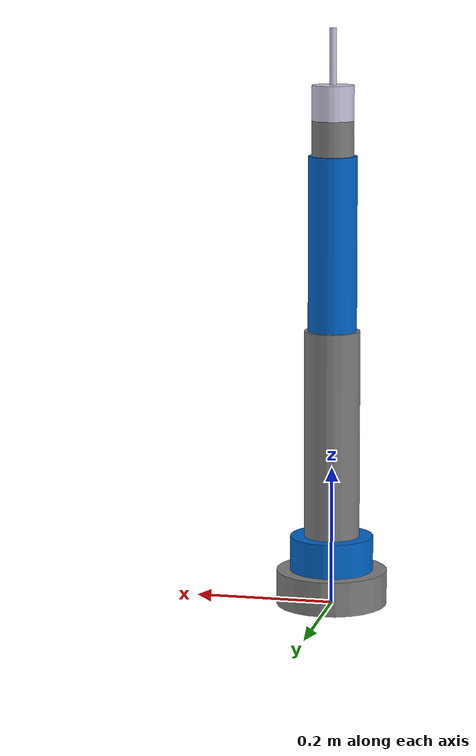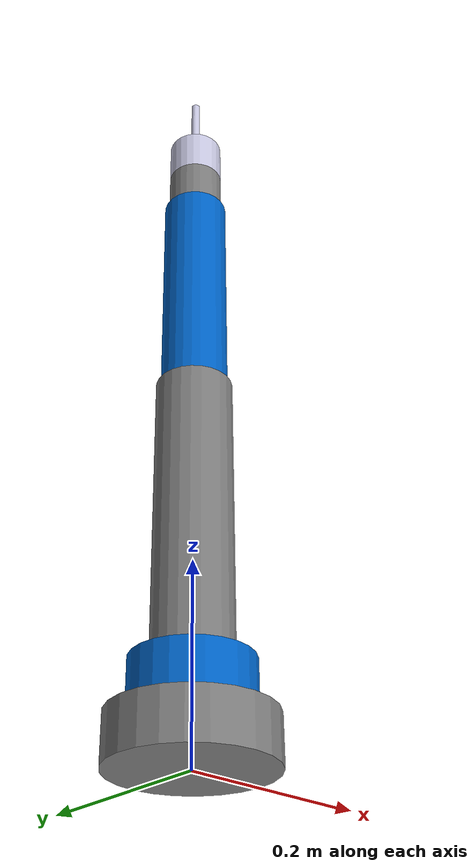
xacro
<?xml version="1.0"?>
<robot name="catheter_arm" xmlns:xacro="http://ros.org/wiki/xacro">

  <!-- ================================================================
       MATERIALS
       ================================================================ -->
  <material name="grey">
    <color rgba="0.5 0.5 0.5 1.0"/>
  </material>
  <material name="blue">
    <color rgba="0.0 0.4 0.8 1.0"/>
  </material>
  <material name="silver">
    <color rgba="0.8 0.8 0.9 1.0"/>
  </material>

  <!-- ================================================================
       MACROS
       ================================================================ -->

  <!-- Cylinder inertia: Ixx = Iyy = m(3r²+h²)/12, Izz = mr²/2 -->
  <xacro:macro name="cylinder_inertia" params="mass radius length">
    <inertial>
      <mass value="${mass}"/>
      <inertia
        ixx="${mass * (3 * radius**2 + length**2) / 12.0}"
        ixy="0" ixz="0"
        iyy="${mass * (3 * radius**2 + length**2) / 12.0}"
        iyz="0"
        izz="${mass * radius**2 / 2.0}"/>
    </inertial>
  </xacro:macro>

  <!-- ================================================================
       WORLD / BASE
       ================================================================ -->

  <link name="world"/>

  <joint name="world_to_base" type="fixed">
    <parent link="world"/>
    <child link="base_link"/>
    <origin xyz="0 0 0" rpy="0 0 0"/>
  </joint>

  <link name="base_link">
    <xacro:cylinder_inertia mass="5.0" radius="0.08" length="0.05"/>
    <visual>
      <origin xyz="0 0 0.025" rpy="0 0 0"/>
      <geometry><cylinder radius="0.08" length="0.05"/></geometry>
      <material name="grey"/>
    </visual>
    <collision>
      <origin xyz="0 0 0.025" rpy="0 0 0"/>
      <geometry><cylinder radius="0.08" length="0.05"/></geometry>
    </collision>
  </link>

  <!-- ================================================================
       SHOULDER
       ================================================================ -->

  <joint name="shoulder_joint" type="revolute">
    <parent link="base_link"/>
    <child link="shoulder_link"/>
    <origin xyz="0 0 0.05" rpy="0 0 0"/>
    <axis xyz="0 0 1"/>
    <limit lower="-3.14159" upper="3.14159" effort="100" velocity="1.0"/>
    <dynamics damping="0.5" friction="0.0"/>
  </joint>

  <link name="shoulder_link">
    <xacro:cylinder_inertia mass="1.0" radius="0.06" length="0.05"/>
    <visual>
      <origin xyz="0 0 0.025" rpy="0 0 0"/>
      <geometry><cylinder radius="0.06" length="0.05"/></geometry>
      <material name="blue"/>
    </visual>
    <collision>
      <origin xyz="0 0 0.025" rpy="0 0 0"/>
      <geometry><cylinder radius="0.06" length="0.05"/></geometry>
    </collision>
  </link>

  <!-- ================================================================
       UPPER ARM
       ================================================================ -->

  <joint name="upper_arm_joint" type="revolute">
    <parent link="shoulder_link"/>
    <child link="upper_arm_link"/>
    <origin xyz="0 0 0.05" rpy="0 0 0"/>
    <axis xyz="0 1 0"/>
    <limit lower="-1.5708" upper="1.5708" effort="100" velocity="1.0"/>
    <dynamics damping="0.5" friction="0.0"/>
  </joint>

  <link name="upper_arm_link">
    <xacro:cylinder_inertia mass="1.5" radius="0.04" length="0.3"/>
    <visual>
      <origin xyz="0 0 0.15" rpy="0 0 0"/>
      <geometry><cylinder radius="0.04" length="0.3"/></geometry>
      <material name="grey"/>
    </visual>
    <collision>
      <origin xyz="0 0 0.15" rpy="0 0 0"/>
      <geometry><cylinder radius="0.04" length="0.3"/></geometry>
    </collision>
  </link>

  <!-- ================================================================
       FOREARM
       ================================================================ -->

  <joint name="forearm_joint" type="revolute">
    <parent link="upper_arm_link"/>
    <child link="forearm_link"/>
    <origin xyz="0 0 0.3" rpy="0 0 0"/>
    <axis xyz="0 1 0"/>
    <limit lower="-3.14159" upper="0.0" effort="100" velocity="1.0"/>
    <dynamics damping="0.5" friction="0.0"/>
  </joint>

  <link name="forearm_link">
    <xacro:cylinder_inertia mass="1.0" radius="0.035" length="0.25"/>
    <visual>
      <origin xyz="0 0 0.125" rpy="0 0 0"/>
      <geometry><cylinder radius="0.035" length="0.25"/></geometry>
      <material name="blue"/>
    </visual>
    <collision>
      <origin xyz="0 0 0.125" rpy="0 0 0"/>
      <geometry><cylinder radius="0.035" length="0.25"/></geometry>
    </collision>
  </link>

  <!-- ================================================================
       WRIST 1
       ================================================================ -->

  <joint name="wrist1_joint" type="revolute">
    <parent link="forearm_link"/>
    <child link="wrist1_link"/>
    <origin xyz="0 0 0.25" rpy="0 0 0"/>
    <axis xyz="0 1 0"/>
    <limit lower="-3.14159" upper="3.14159" effort="50" velocity="2.0"/>
    <dynamics damping="0.1" friction="0.0"/>
  </joint>

  <link name="wrist1_link">
    <xacro:cylinder_inertia mass="0.3" radius="0.03" length="0.05"/>
    <visual>
      <origin xyz="0 0 0.025" rpy="0 0 0"/>
      <geometry><cylinder radius="0.03" length="0.05"/></geometry>
      <material name="grey"/>
    </visual>
    <collision>
      <origin xyz="0 0 0.025" rpy="0 0 0"/>
      <geometry><cylinder radius="0.03" length="0.05"/></geometry>
    </collision>
  </link>

  <!-- ================================================================
       WRIST 2
       ================================================================ -->

  <joint name="wrist2_joint" type="revolute">
    <parent link="wrist1_link"/>
    <child link="wrist2_link"/>
    <origin xyz="0 0 0.05" rpy="0 0 0"/>
    <axis xyz="1 0 0"/>
    <limit lower="-3.14159" upper="3.14159" effort="50" velocity="2.0"/>
    <dynamics damping="0.1" friction="0.0"/>
  </joint>

  <link name="wrist2_link">
    <xacro:cylinder_inertia mass="0.3" radius="0.03" length="0.05"/>
    <visual>
      <origin xyz="0 0 0.025" rpy="0 0 0"/>
      <geometry><cylinder radius="0.03" length="0.05"/></geometry>
      <material name="silver"/>
    </visual>
    <collision>
      <origin xyz="0 0 0.025" rpy="0 0 0"/>
      <geometry><cylinder radius="0.03" length="0.05"/></geometry>
    </collision>
  </link>

  <!-- ================================================================
       NEEDLE END-EFFECTOR
       ================================================================ -->

  <joint name="needle_joint" type="fixed">
    <parent link="wrist2_link"/>
    <child link="needle_link"/>
    <origin xyz="0 0 0.05" rpy="0 0 0"/>
  </joint>

  <link name="needle_link">
    <inertial>
      <mass value="0.05"/>
      <inertia
        ixx="0.0001" ixy="0" ixz="0"
        iyy="0.0001" iyz="0"
        izz="0.000001"/>
    </inertial>
    <visual>
      <origin xyz="0 0 0.04" rpy="0 0 0"/>
      <geometry><cylinder radius="0.005" length="0.08"/></geometry>
      <material name="silver"/>
    </visual>
    <collision>
      <origin xyz="0 0 0.04" rpy="0 0 0"/>
      <geometry><cylinder radius="0.005" length="0.08"/></geometry>
    </collision>
  </link>

  <!-- ================================================================
       ROS2 CONTROL HARDWARE INTERFACE
       ================================================================ -->

  <ros2_control name="GazeboSystem" type="system">
    <hardware>
      <plugin>gz_ros2_control/GazeboSimSystem</plugin>
    </hardware>
    <joint name="shoulder_joint">
      <command_interface name="position"/>
      <state_interface name="position"/>
      <state_interface name="velocity"/>
    </joint>
    <joint name="upper_arm_joint">
      <command_interface name="position"/>
      <state_interface name="position"/>
      <state_interface name="velocity"/>
    </joint>
    <joint name="forearm_joint">
      <command_interface name="position"/>
      <state_interface name="position"/>
      <state_interface name="velocity"/>
    </joint>
    <joint name="wrist1_joint">
      <command_interface name="position"/>
      <state_interface name="position"/>
      <state_interface name="velocity"/>
    </joint>
    <joint name="wrist2_joint">
      <command_interface name="position"/>
      <state_interface name="position"/>
      <state_interface name="velocity"/>
    </joint>
  </ros2_control>

  <!-- ================================================================
       GZ SIM PLUGIN TAG
       ================================================================ -->

  <gazebo>
    <plugin filename="gz_ros2_control-system"
            name="gz_ros2_control::GazeboSimROS2ControlPlugin">
      <parameters>$(find catheter_sim)/config/controllers.yaml</parameters>
      <ros>
        <remapping>~/robot_description:=robot_description</remapping>
      </ros>
    </plugin>
  </gazebo>

</robot>
